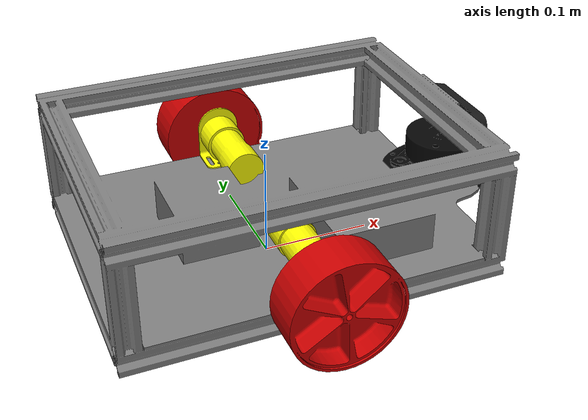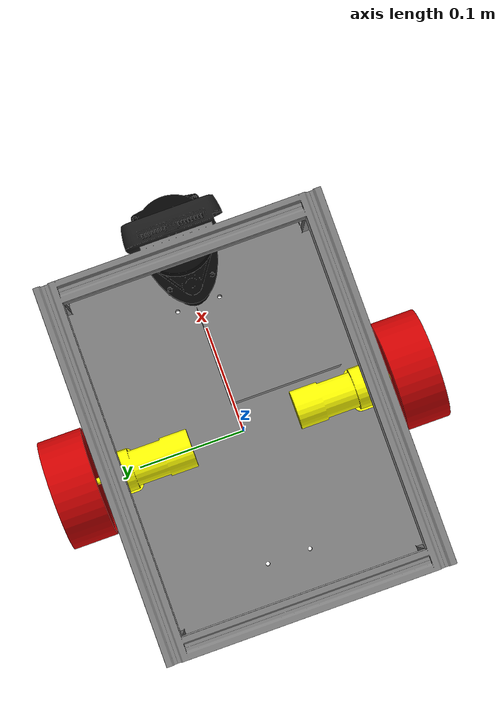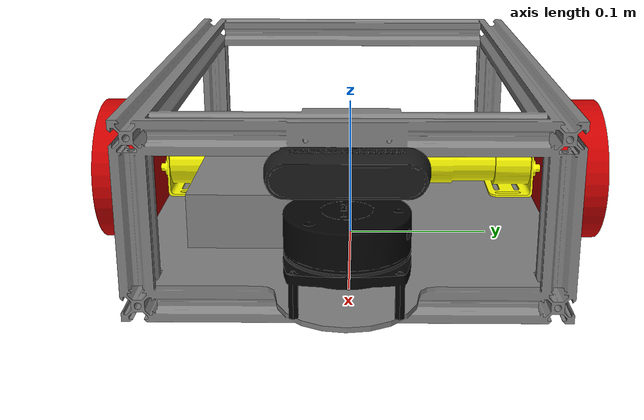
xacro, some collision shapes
<?xml version="1.0"?>
<robot xmlns:xacro="http://www.ros.org/wiki/xacro" name="neobot">

    <!--................................ XACRO CONSTANTS .............................. -->

    <xacro:property name="eps" value="0.002"/>

    <xacro:arg name="use_ros2_control"     default="false" />
    <xacro:arg name="publish_ground_truth" default="false" />
    <xacro:arg name="use_lidar"            default="false" />
    <xacro:arg name="use_camera"           default="false" />
    <xacro:arg name="use_imu"              default="true" />

    <xacro:property name="odometry_source" value="$(arg odometry_source)"/>

    <!-- ............................... LOAD MACROS ................................. -->

    <xacro:include filename="$(find neobot)/urdf/neobot_structure.xacro"/>
    <xacro:include filename="$(find neobot)/urdf/gz_plugins.xacro"/>
    <xacro:if value="$(arg use_ros2_control)">
        <xacro:include filename="$(find neobot)/urdf/ros2_control.xacro"/>
    </xacro:if>

</robot>

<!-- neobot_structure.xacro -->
<robot xmlns:xacro="http://www.ros.org/wiki/xacro" name="neobot">

    <xacro:include filename="$(find neobot)/urdf/materials.xacro"/>

    <link name="base_footprint"/>

    <link name="base_link">
        <inertial>
            <origin xyz="0.0197362666383385 -0.00103592208239938 0.0249437742762995" rpy="0 0 0"/>
            <mass value="2.886"/>
            <inertia ixx="0.0230886"
                     ixy="-0.00059632880"
                     ixz="0.00089059654"
                     iyy="0.040993868"
                     iyz="-0.00001729413"
                     izz="0.056762850"/>
        </inertial>

        <collision name="base_link_collision_frame">
            <origin xyz="0 0 0.037" rpy="0 0 0"/>
            <geometry>
                <box size="0.34 0.26 0.12"/>
            </geometry>
        </collision>

        <collision name="base_link_collision_lidar">
            <origin xyz="0.18 0 0.026" rpy="0 0 0"/>
            <geometry>
                <cylinder length="0.0526" radius="0.04"/>
            </geometry>
        </collision>

        <collision name="base_link_collision_camera">
            <origin xyz="0.184025 0 0.072" rpy="0 0 0"/>
            <geometry>
                <box size="0.02805 0.09 0.025"/>
            </geometry>
        </collision>

        <visual name="base_link_main_visual">
            <origin xyz="0 0 0" rpy="1.57 0 0"/>
            <geometry>
                <mesh filename="file://$(find neobot)/meshes/base_link_main.STL" scale="1 1 1"/>
            </geometry>
            <material name="aluminium"/>
        </visual>
        <visual name="base_link_lidar_visual">
            <origin xyz="0 0 0" rpy="1.57 0 0"/>
            <geometry>
                <mesh filename="file://$(find neobot)/meshes/lidar.STL" scale="1 1 1"/>
            </geometry>
            <material name="dark_grey"/>
        </visual>
        <visual name="base_link_realsense_visual">
            <origin xyz="0 0 0" rpy="1.57 0 0"/>
            <geometry>
                <mesh filename="file://$(find neobot)/meshes/realsense.STL" scale="1 1 1"/>
            </geometry>
            <material name="plastic"/>
        </visual>
        <visual name="base_link_left_motor_visual">
            <origin xyz="0.02 0.15 0" rpy="0 0 3.14"/>
            <geometry>
                <mesh filename="file://$(find neobot)/meshes/motor.STL" scale="1 1 1"/>
            </geometry>
            <material name="yellow"/>
        </visual>
        <visual name="base_link_right_motor_visual">
            <origin xyz="-0.02 -0.15 0" rpy="0 0 0"/>
            <geometry>
                <mesh filename="file://$(find neobot)/meshes/motor.STL" scale="1 1 1"/>
            </geometry>
            <material name="yellow"/>
        </visual>
    </link>

    <joint name="base_footprint_joint" type="fixed">
        <parent link="base_footprint"/>
        <child link="base_link"/>
        <origin xyz="0 0 0.0345" rpy="0 0 0"/>
    </joint>

    <link name="left_wheel_link">
        <inertial>
            <origin xyz="0 0.015369 0" rpy="0 0 0"/>
            <mass value="0.132"/>
            <inertia ixx="0.000103824895" ixy="0" ixz="0"
                    iyy="0.000183869513" iyz="0" izz="0.000103824895"/>
        </inertial>
        <collision name="left_wheel_link_collision">
            <origin xyz="0 0.02 0" rpy="1.57079632679 0 0"/>
            <geometry>
                <cylinder length="0.04" radius="0.05"/>
            </geometry>
            <surface>
                <friction>
                    <ode mu="5.00" mu2="5.00" slip1="0" slip2="0"/>
                </friction>
            </surface>
        </collision>
        <visual name="left_wheel_link_visual">
            <origin xyz="0 0 0" rpy="0 0 0"/>
            <geometry>
                <mesh filename="file://$(find neobot)/meshes/left_wheel_link.STL" scale="1 1 1"/>
            </geometry>
            <material name="red"/>
        </visual>
    </link>

    <joint name="left_wheel_joint" type="continuous">
        <parent link="base_link"/>
        <child link="left_wheel_link"/>
        <origin xyz="0 0.136 0.0155" rpy="0 0 0"/>
        <axis xyz="0 1 0"/>
    </joint>

    <link name="right_wheel_link">
        <inertial>
            <origin xyz="0 -0.015369 0" rpy="0 0 0"/>
            <mass value="0.132"/>
            <inertia ixx="0.000103824895" ixy="0" ixz="0"
                    iyy="0.000183869513" iyz="0" izz="0.000103824895"/>
        </inertial>
        <collision name="right_wheel_link_collision">
            <origin xyz="0 -0.02 0" rpy="1.57079632679 0 0"/>
            <geometry>
                <cylinder length="0.04" radius="0.05"/>
            </geometry>
            <surface>
                <friction>
                    <ode mu="5.00" mu2="5.00" slip1="0" slip2="0"/>
                </friction>
            </surface>
        </collision>
        <visual name="right_wheel_link_visual">
            <origin xyz="0 0 0" rpy="0 0 0"/>
            <geometry>
                <mesh filename="file://$(find neobot)/meshes/right_wheel_link.STL" scale="1 1 1"/>
            </geometry>
            <material name="red"/>
        </visual>
    </link>

    <joint name="right_wheel_joint" type="continuous">
        <parent link="base_link"/>
        <child link="right_wheel_link"/>
        <origin xyz="0 -0.136 0.0155" rpy="0 0 0"/>
        <axis xyz="0 1 0"/>
    </joint>

    <link name="front_castor_link">
        <inertial>
            <origin xyz="0 0 0" rpy="0 0 0"/>
            <mass value="0.0138"/>
            <inertia ixx="0.000000312122139" ixy="0" ixz="0"
                    iyy="0.000000312122139" iyz="0" izz="0.000000312122139"/>
        </inertial>
        <collision name="front_castor_link_collision">
            <origin xyz="0 0 0" rpy="0 0 0"/>
            <geometry>
                <sphere radius="0.0075"/>
            </geometry>
            <surface>
                <friction>
                    <ode mu="0.00" mu2="0.00"/>
                </friction>
            </surface>
        </collision>
        <visual name="front_castor_link_visual">
            <origin xyz="0 0 0" rpy="0 0 0"/>
            <geometry>
                <mesh filename="file://$(find neobot)/meshes/front_castor_link.STL" scale="1 1 1"/>
            </geometry>
            <material name="red"/>
        </visual>
    </link>

    <joint name="front_castor_joint" type="fixed">
        <parent link="base_link"/>
        <child link="front_castor_link"/>
        <origin xyz="0.12 0 -0.0265" rpy="0 0 0"/>
    </joint>

    <link name="rear_castor_link">
        <inertial>
            <origin xyz="0 0 0" rpy="0 0 0"/>
            <mass value="0.0138"/>
            <inertia ixx="0.000000312122139" ixy="0" ixz="0"
                    iyy="0.000000312122139" iyz="0" izz="0.000000312122139"/>
        </inertial>
        <collision name="rear_castor_link_collision">
            <origin xyz="0 0 0" rpy="0 0 0"/>
            <geometry>
                <sphere radius="0.0075"/>
            </geometry>
            <surface>
                <friction>
                    <ode mu="0.00" mu2="0.00"/>
                </friction>
            </surface>
        </collision>
        <visual name="rear_castor_link_visual">
            <origin xyz="0 0 0" rpy="0 0 0"/>
            <geometry>
                <mesh filename="file://$(find neobot)/meshes/rear_castor_link.STL" scale="1 1 1"/>
            </geometry>
            <material name="red"/>
        </visual>
    </link>

    <joint name="rear_castor_joint" type="fixed">
        <parent link="base_link"/>
        <child link="rear_castor_link"/>
        <origin xyz="-0.12 0 -0.0265" rpy="0 0 0"/>
    </joint>

    <xacro:if value="$(arg use_imu)">
        <link name="imu_link"/>

        <joint name="imu_joint" type="fixed">
            <parent link="base_link"/>
            <child link="imu_link"/>
            <origin xyz="0 0 0" rpy="0 0 0"/>
        </joint>
    </xacro:if>

    <xacro:if value="$(arg use_lidar)">
        <link name="lidar_link"/>

        <joint name="lidar_joint" type="fixed">
            <parent link="base_link"/>
            <child link="lidar_link"/>
            <origin xyz="0.18 0 0.0376" rpy="0 0 0"/>
        </joint>
    </xacro:if>

    <xacro:if value="$(arg use_camera)">
        <link name="camera_link"/>

        <joint name="camera_joint" type="fixed">
            <parent link="base_link"/>
            <child link="camera_link"/>
            <origin xyz="0.19905 0 0.072" rpy="0 0 0"/>
        </joint>
    </xacro:if>

</robot>

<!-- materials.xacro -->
<robot xmlns:xacro="http://www.ros.org/wiki/xacro" name="neobot">

    <material name="black">
        <color rgba="0.0 0.0 0.0 1.0"/>
    </material>

    <material name="blue">
        <color rgba="0.0 0.0 0.8 1.0"/>
    </material>

    <material name="green">
        <color rgba="0.0 0.8 0.0 1.0"/>
    </material>

    <material name="yellow">
        <color rgba="1.0 1.0 0.0 1.0"/>
    </material>

    <material name="dark_grey">
        <color rgba="0.02 0.02 0.02 1.0"/>
    </material>

    <material name="orange">
        <color rgba="${255/255} ${108/255} ${10/255} 1.0"/>
    </material>

    <material name="brown">
        <color rgba="${139/255} ${69/255} ${19/255} 1.0"/>
    </material>

    <material name="red">
        <color rgba="0.8 0.0 0.0 1.0"/>
    </material>

    <material name="turquoise">
        <color rgba="${64/255} ${224/255} ${208/255} 1.0"/>
    </material>

    <material name="purple">
        <color rgba="${128/255} ${0/255} ${128/255} 1.0"/>
    </material>

    <material name="white">
        <color rgba="1.0 1.0 1.0 1.0"/>
    </material>

    <material name="aluminium">
        <color rgba="0.5 0.5 0.5 1"/>
    </material>

    <material name="plastic">
        <color rgba="0.1 0.1 0.1 1"/>
    </material>

</robot>
